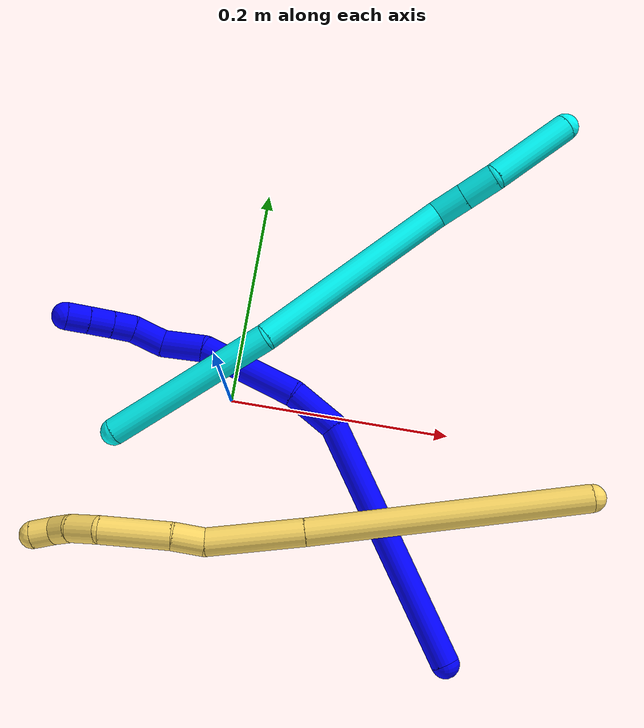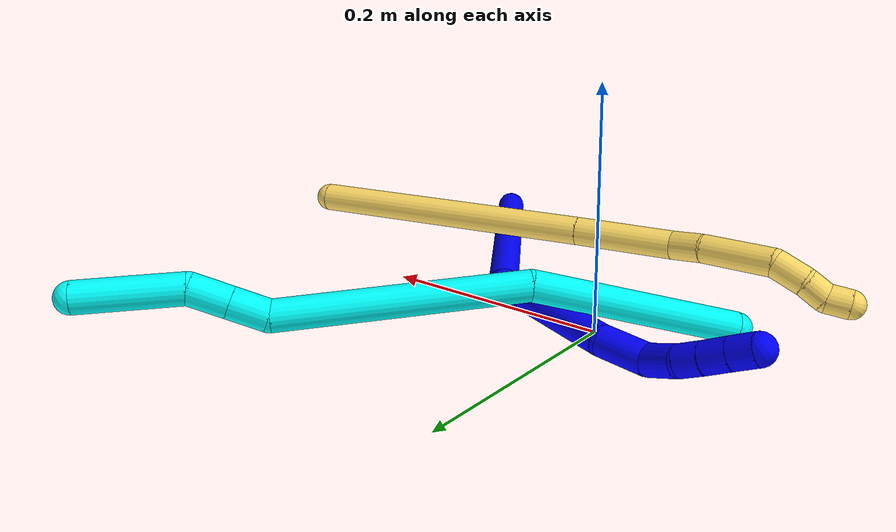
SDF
<sdf version="1.7">
 <world name="default">
  <model name="photoneo_s_sensor">
   <static>1</static>
   <pose>0 0 2 1.57079 1.57079 3.14159</pose>
   <link name="link">
    <inertial><mass>0.1</mass></inertial>
    <sensor name="sensor" type="depth">
     <update_rate>30</update_rate>
     <camera>
      <horizontal_fov>1.22</horizontal_fov>
      <image><width>1920</width><height>1200</height><format>B8G8R8</format></image>
      <clip><near>0.1</near><far>4</far></clip>
      <depth_camera><output>points</output></depth_camera>
     </camera>
     <plugin name="camera_plugin" filename="libgazebo_ros_depth_camera.so">
      <baseline>0.2</baseline>
      <alwaysOn>1</alwaysOn>
      <updateRate>0.0</updateRate>
      <cameraName>camera_ir</cameraName>
      <imageTopicName>/camera/color/image_raw</imageTopicName>
      <cameraInfoTopicName>/camera/color/camera_info</cameraInfoTopicName>
      <depthImageTopicName>/camera/depth/image_raw</depthImageTopicName>
      <depthImageCameraInfoTopicName>/camera/depth/camera_info</depthImageCameraInfoTopicName>
      <pointCloudTopicName>/camera/depth/points</pointCloudTopicName>
      <frameName>fr_optical</frameName>
      <pointCloudCutoff>0.1</pointCloudCutoff>
      <pointCloudCutoffMax>2.0</pointCloudCutoffMax>
      <distortionK1>0</distortionK1>
      <distortionK2>0</distortionK2>
      <distortionK3>0</distortionK3>
      <distortionT1>0</distortionT1>
      <distortionT2>0</distortionT2>
      <CxPrime>0</CxPrime>
      <Cx>0</Cx>
      <Cy>0</Cy>
      <focalLength>0</focalLength>
      <hackBaseline>0</hackBaseline>
     </plugin>
    </sensor>
   </link>
  </model>
  <model name="bin">
   <static>1</static>
   <link name="bottom">
    <collision name="collision-bottom">
     <pose>0 0 -0.01 0 -0 0</pose>
     <geometry><box><size>0.8 0.6 0.02</size></box></geometry>
     <surface>
      <friction><ode><mu>100</mu><mu2>100</mu2></ode></friction>
      <contact><collide_bitmask>65535</collide_bitmask></contact>
     </surface>
    </collision>
   </link>
   <link name="west_wall">
    <collision name="collision-west_wall">
     <pose>-0.41 0 0.1 0 -0 0</pose>
     <geometry><box><size>0.02 0.6 0.2</size></box></geometry>
     <surface>
      <friction><ode><mu>100</mu><mu2>100</mu2></ode></friction>
      <contact><collide_bitmask>65535</collide_bitmask></contact>
     </surface>
    </collision>
   </link>
   <link name="east_wall">
    <collision name="collision-east_wall">
     <pose>0.41 0 0.1 0 -0 0</pose>
     <geometry><box><size>0.02 0.6 0.2</size></box></geometry>
     <surface>
      <friction><ode><mu>100</mu><mu2>100</mu2></ode></friction>
      <contact><collide_bitmask>65535</collide_bitmask></contact>
     </surface>
    </collision>
   </link>
   <link name="south_wall">
    <collision name="collision-south_wall">
     <pose>0 -0.31 0.1 0 -0 0</pose>
     <geometry><box><size>0.8 0.02 0.2</size></box></geometry>
     <surface>
      <friction><ode><mu>100</mu><mu2>100</mu2></ode></friction>
      <contact><collide_bitmask>65535</collide_bitmask></contact>
     </surface>
    </collision>
   </link>
   <link name="north_wall">
    <collision name="collision-north_wall">
     <pose>0 0.31 0.1 0 -0 0</pose>
     <geometry><box><size>0.8 0.02 0.2</size></box></geometry>
     <surface>
      <friction><ode><mu>100</mu><mu2>100</mu2></ode></friction>
      <contact><collide_bitmask>65535</collide_bitmask></contact>
     </surface>
    </collision>
   </link>
  </model>
  <model name="1">
   <static>0</static>
   <link name="1">
    <collision name="collision-cylinder-e_1_1_4">
     <pose>-0.073846 0.087423 -0.008017 -1.66225 -0.699344 0.760372</pose>
     <geometry><cylinder><radius>0.0125</radius><length>0.229437</length></cylinder></geometry>
     <surface>
      <friction><ode><mu>1.16</mu><mu2>1.16</mu2><slip1>0</slip1><slip2>0</slip2></ode></friction>
      <contact><ode><kp>1e+06</kp><kd>1</kd><max_vel>0</max_vel><min_depth>0.001</min_depth></ode></contact>
     </surface>
    </collision>
    <visual name="visual-cylinder-e_1_1_4">
     <pose>-0.073846 0.087423 -0.008017 -1.66225 -0.699344 0.760372</pose>
     <geometry><cylinder><radius>0.0125</radius><length>0.229437</length></cylinder></geometry>
     <material><ambient>0 0 1 1</ambient></material>
    </visual>
    <collision name="collision-cylinder-e_2_4_5">
     <pose>-0.165057 0.188355 -0.008152 -1.04257 -0.837615 0.500545</pose>
     <geometry><cylinder><radius>0.0125</radius><length>0.04674</length></cylinder></geometry>
     <surface>
      <friction><ode><mu>1.16</mu><mu2>1.16</mu2><slip1>0</slip1><slip2>0</slip2></ode></friction>
      <contact><ode><kp>1e+06</kp><kd>1</kd><max_vel>0</max_vel><min_depth>0.001</min_depth></ode></contact>
     </surface>
    </collision>
    <visual name="visual-cylinder-e_2_4_5">
     <pose>-0.165057 0.188355 -0.008152 -1.04257 -0.837615 0.500545</pose>
     <geometry><cylinder><radius>0.0125</radius><length>0.04674</length></cylinder></geometry>
     <material><ambient>0 0 1 1</ambient></material>
    </visual>
    <collision name="collision-cylinder-e_3_5_6">
     <pose>-0.221319 0.218179 0.017955 -0.730198 -1.00941 0.416203</pose>
     <geometry><cylinder><radius>0.0125</radius><length>0.091897</length></cylinder></geometry>
     <surface>
      <friction><ode><mu>1.16</mu><mu2>1.16</mu2><slip1>0</slip1><slip2>0</slip2></ode></friction>
      <contact><ode><kp>1e+06</kp><kd>1</kd><max_vel>0</max_vel><min_depth>0.001</min_depth></ode></contact>
     </surface>
    </collision>
    <visual name="visual-cylinder-e_3_5_6">
     <pose>-0.221319 0.218179 0.017955 -0.730198 -1.00941 0.416203</pose>
     <geometry><cylinder><radius>0.0125</radius><length>0.091897</length></cylinder></geometry>
     <material><ambient>0 0 1 1</ambient></material>
    </visual>
    <collision name="collision-cylinder-e_4_6_7">
     <pose>-0.276978 0.235635 0.046777 -0.107215 -1.00443 0.05892</pose>
     <geometry><cylinder><radius>0.0125</radius><length>0.039729</length></cylinder></geometry>
     <surface>
      <friction><ode><mu>1.16</mu><mu2>1.16</mu2><slip1>0</slip1><slip2>0</slip2></ode></friction>
      <contact><ode><kp>1e+06</kp><kd>1</kd><max_vel>0</max_vel><min_depth>0.001</min_depth></ode></contact>
     </surface>
    </collision>
    <visual name="visual-cylinder-e_4_6_7">
     <pose>-0.276978 0.235635 0.046777 -0.107215 -1.00443 0.05892</pose>
     <geometry><cylinder><radius>0.0125</radius><length>0.039729</length></cylinder></geometry>
     <material><ambient>0 0 1 1</ambient></material>
    </visual>
    <collision name="collision-cylinder-e_5_7_8">
     <pose>-0.302628 0.244153 0.067044 -0.651737 -0.631072 0.219731</pose>
     <geometry><cylinder><radius>0.0125</radius><length>0.030127</length></cylinder></geometry>
     <surface>
      <friction><ode><mu>1.16</mu><mu2>1.16</mu2><slip1>0</slip1><slip2>0</slip2></ode></friction>
      <contact><ode><kp>1e+06</kp><kd>1</kd><max_vel>0</max_vel><min_depth>0.001</min_depth></ode></contact>
     </surface>
    </collision>
    <visual name="visual-cylinder-e_5_7_8">
     <pose>-0.302628 0.244153 0.067044 -0.651737 -0.631072 0.219731</pose>
     <geometry><cylinder><radius>0.0125</radius><length>0.030127</length></cylinder></geometry>
     <material><ambient>0 0 1 1</ambient></material>
    </visual>
    <collision name="collision-cylinder-e_6_8_9">
     <pose>-0.316556 0.254578 0.084862 -0.357841 -0.525093 0.097133</pose>
     <geometry><cylinder><radius>0.0125</radius><length>0.020109</length></cylinder></geometry>
     <surface>
      <friction><ode><mu>1.16</mu><mu2>1.16</mu2><slip1>0</slip1><slip2>0</slip2></ode></friction>
      <contact><ode><kp>1e+06</kp><kd>1</kd><max_vel>0</max_vel><min_depth>0.001</min_depth></ode></contact>
     </surface>
    </collision>
    <visual name="visual-cylinder-e_6_8_9">
     <pose>-0.316556 0.254578 0.084862 -0.357841 -0.525093 0.097133</pose>
     <geometry><cylinder><radius>0.0125</radius><length>0.020109</length></cylinder></geometry>
     <material><ambient>0 0 1 1</ambient></material>
    </visual>
    <collision name="collision-cylinder-e_7_9_10">
     <pose>-0.326709 0.260801 0.10197 -0.340743 -0.493489 0.086611</pose>
     <geometry><cylinder><radius>0.0125</radius><length>0.021585</length></cylinder></geometry>
     <surface>
      <friction><ode><mu>1.16</mu><mu2>1.16</mu2><slip1>0</slip1><slip2>0</slip2></ode></friction>
      <contact><ode><kp>1e+06</kp><kd>1</kd><max_vel>0</max_vel><min_depth>0.001</min_depth></ode></contact>
     </surface>
    </collision>
    <visual name="visual-cylinder-e_7_9_10">
     <pose>-0.326709 0.260801 0.10197 -0.340743 -0.493489 0.086611</pose>
     <geometry><cylinder><radius>0.0125</radius><length>0.021585</length></cylinder></geometry>
     <material><ambient>0 0 1 1</ambient></material>
    </visual>
    <collision name="collision-cylinder-e_8_10_2">
     <pose>-0.336734 0.266894 0.119364 -0.33282 -0.503158 0.086288</pose>
     <geometry><cylinder><radius>0.0125</radius><length>0.020375</length></cylinder></geometry>
     <surface>
      <friction><ode><mu>1.16</mu><mu2>1.16</mu2><slip1>0</slip1><slip2>0</slip2></ode></friction>
      <contact><ode><kp>1e+06</kp><kd>1</kd><max_vel>0</max_vel><min_depth>0.001</min_depth></ode></contact>
     </surface>
    </collision>
    <visual name="visual-cylinder-e_8_10_2">
     <pose>-0.336734 0.266894 0.119364 -0.33282 -0.503158 0.086288</pose>
     <geometry><cylinder><radius>0.0125</radius><length>0.020375</length></cylinder></geometry>
     <material><ambient>0 0 1 1</ambient></material>
    </visual>
    <collision name="collision-sphere-2">
     <pose>-0.341646 0.26981 0.127799 0 -0 0</pose>
     <geometry><sphere><radius>0.0125</radius></sphere></geometry>
     <surface>
      <friction><ode><mu>1.16</mu><mu2>1.16</mu2><slip1>0</slip1><slip2>0</slip2></ode></friction>
      <contact><ode><kp>1e+06</kp><kd>1</kd><max_vel>0</max_vel><min_depth>0.001</min_depth></ode></contact>
     </surface>
    </collision>
    <visual name="visual-sphere-2">
     <pose>-0.341646 0.26981 0.127799 0 -0 0</pose>
     <geometry><sphere><radius>0.0125</radius></sphere></geometry>
     <material><ambient>0 0 1 1</ambient></material>
    </visual>
    <collision name="collision-sphere-10">
     <pose>-0.331821 0.263978 0.110928 0 -0 0</pose>
     <geometry><sphere><radius>0.0125</radius></sphere></geometry>
     <surface>
      <friction><ode><mu>1.16</mu><mu2>1.16</mu2><slip1>0</slip1><slip2>0</slip2></ode></friction>
      <contact><ode><kp>1e+06</kp><kd>1</kd><max_vel>0</max_vel><min_depth>0.001</min_depth></ode></contact>
     </surface>
    </collision>
    <visual name="visual-sphere-10">
     <pose>-0.331821 0.263978 0.110928 0 -0 0</pose>
     <geometry><sphere><radius>0.0125</radius></sphere></geometry>
     <material><ambient>0 0 1 1</ambient></material>
    </visual>
    <collision name="collision-sphere-9">
     <pose>-0.321596 0.257625 0.093011 0 -0 0</pose>
     <geometry><sphere><radius>0.0125</radius></sphere></geometry>
     <surface>
      <friction><ode><mu>1.16</mu><mu2>1.16</mu2><slip1>0</slip1><slip2>0</slip2></ode></friction>
      <contact><ode><kp>1e+06</kp><kd>1</kd><max_vel>0</max_vel><min_depth>0.001</min_depth></ode></contact>
     </surface>
    </collision>
    <visual name="visual-sphere-9">
     <pose>-0.321596 0.257625 0.093011 0 -0 0</pose>
     <geometry><sphere><radius>0.0125</radius></sphere></geometry>
     <material><ambient>0 0 1 1</ambient></material>
    </visual>
    <collision name="collision-sphere-4">
     <pose>-0.147692 0.174846 -0.016035 0 -0 0</pose>
     <geometry><sphere><radius>0.0125</radius></sphere></geometry>
     <surface>
      <friction><ode><mu>1.16</mu><mu2>1.16</mu2><slip1>0</slip1><slip2>0</slip2></ode></friction>
      <contact><ode><kp>1e+06</kp><kd>1</kd><max_vel>0</max_vel><min_depth>0.001</min_depth></ode></contact>
     </surface>
    </collision>
    <visual name="visual-sphere-4">
     <pose>-0.147692 0.174846 -0.016035 0 -0 0</pose>
     <geometry><sphere><radius>0.0125</radius></sphere></geometry>
     <material><ambient>0 0 1 1</ambient></material>
    </visual>
    <collision name="collision-sphere-1">
     <geometry><sphere><radius>0.0125</radius></sphere></geometry>
     <surface>
      <friction><ode><mu>1.16</mu><mu2>1.16</mu2><slip1>0</slip1><slip2>0</slip2></ode></friction>
      <contact><ode><kp>1e+06</kp><kd>1</kd><max_vel>0</max_vel><min_depth>0.001</min_depth></ode></contact>
     </surface>
    </collision>
    <visual name="visual-sphere-1">
     <geometry><sphere><radius>0.0125</radius></sphere></geometry>
     <material><ambient>0 0 1 1</ambient></material>
    </visual>
    <collision name="collision-sphere-8">
     <pose>-0.311516 0.25153 0.076713 0 -0 0</pose>
     <geometry><sphere><radius>0.0125</radius></sphere></geometry>
     <surface>
      <friction><ode><mu>1.16</mu><mu2>1.16</mu2><slip1>0</slip1><slip2>0</slip2></ode></friction>
      <contact><ode><kp>1e+06</kp><kd>1</kd><max_vel>0</max_vel><min_depth>0.001</min_depth></ode></contact>
     </surface>
    </collision>
    <visual name="visual-sphere-8">
     <pose>-0.311516 0.25153 0.076713 0 -0 0</pose>
     <geometry><sphere><radius>0.0125</radius></sphere></geometry>
     <material><ambient>0 0 1 1</ambient></material>
    </visual>
    <collision name="collision-sphere-5">
     <pose>-0.182422 0.201863 -0.000269 0 -0 0</pose>
     <geometry><sphere><radius>0.0125</radius></sphere></geometry>
     <surface>
      <friction><ode><mu>1.16</mu><mu2>1.16</mu2><slip1>0</slip1><slip2>0</slip2></ode></friction>
      <contact><ode><kp>1e+06</kp><kd>1</kd><max_vel>0</max_vel><min_depth>0.001</min_depth></ode></contact>
     </surface>
    </collision>
    <visual name="visual-sphere-5">
     <pose>-0.182422 0.201863 -0.000269 0 -0 0</pose>
     <geometry><sphere><radius>0.0125</radius></sphere></geometry>
     <material><ambient>0 0 1 1</ambient></material>
    </visual>
    <collision name="collision-sphere-6">
     <pose>-0.260215 0.234495 0.03618 0 -0 0</pose>
     <geometry><sphere><radius>0.0125</radius></sphere></geometry>
     <surface>
      <friction><ode><mu>1.16</mu><mu2>1.16</mu2><slip1>0</slip1><slip2>0</slip2></ode></friction>
      <contact><ode><kp>1e+06</kp><kd>1</kd><max_vel>0</max_vel><min_depth>0.001</min_depth></ode></contact>
     </surface>
    </collision>
    <visual name="visual-sphere-6">
     <pose>-0.260215 0.234495 0.03618 0 -0 0</pose>
     <geometry><sphere><radius>0.0125</radius></sphere></geometry>
     <material><ambient>0 0 1 1</ambient></material>
    </visual>
    <collision name="collision-sphere-7">
     <pose>-0.29374 0.236776 0.057375 0 -0 0</pose>
     <geometry><sphere><radius>0.0125</radius></sphere></geometry>
     <surface>
      <friction><ode><mu>1.16</mu><mu2>1.16</mu2><slip1>0</slip1><slip2>0</slip2></ode></friction>
      <contact><ode><kp>1e+06</kp><kd>1</kd><max_vel>0</max_vel><min_depth>0.001</min_depth></ode></contact>
     </surface>
    </collision>
    <visual name="visual-sphere-7">
     <pose>-0.29374 0.236776 0.057375 0 -0 0</pose>
     <geometry><sphere><radius>0.0125</radius></sphere></geometry>
     <material><ambient>0 0 1 1</ambient></material>
    </visual>
    <inertial>
     <pose>-0.170793 0.163632 0.019295 0 -0 0</pose>
     <mass>0.5</mass>
     <inertia>
      <ixx>0.001141</ixx>
      <ixy>0</ixy>
      <ixz>0</ixz>
      <iyy>0.001041</iyy>
      <iyz>0</iyz>
      <izz>-6.8e-05</izz>
     </inertia>
    </inertial>
   </link>
   <pose>0.225927 -0.199859 0.011495 0.747703 -0.604911 -0.320712</pose>
  </model>
  <model name="3">
   <static>0</static>
   <link name="3">
    <collision name="collision-cylinder-e_1_1_4">
     <pose>0.03558 0.028752 0.06717 -0.404447 0.45316 -0.094463</pose>
     <geometry><cylinder><radius>0.0125</radius><length>0.162534</length></cylinder></geometry>
     <surface>
      <friction><ode><mu>1.16</mu><mu2>1.16</mu2><slip1>0</slip1><slip2>0</slip2></ode></friction>
      <contact><ode><kp>1e+06</kp><kd>1</kd><max_vel>0</max_vel><min_depth>0.001</min_depth></ode></contact>
     </surface>
    </collision>
    <visual name="visual-cylinder-e_1_1_4">
     <pose>0.03558 0.028752 0.06717 -0.404447 0.45316 -0.094463</pose>
     <geometry><cylinder><radius>0.0125</radius><length>0.162534</length></cylinder></geometry>
     <material><ambient>0.003922 1 0.996078 1</ambient></material>
    </visual>
    <collision name="collision-cylinder-e_2_4_5">
     <pose>0.126665 0.110489 0.194239 -0.724229 0.606736 -0.236061</pose>
     <geometry><cylinder><radius>0.0125</radius><length>0.194692</length></cylinder></geometry>
     <surface>
      <friction><ode><mu>1.16</mu><mu2>1.16</mu2><slip1>0</slip1><slip2>0</slip2></ode></friction>
      <contact><ode><kp>1e+06</kp><kd>1</kd><max_vel>0</max_vel><min_depth>0.001</min_depth></ode></contact>
     </surface>
    </collision>
    <visual name="visual-cylinder-e_2_4_5">
     <pose>0.126665 0.110489 0.194239 -0.724229 0.606736 -0.236061</pose>
     <geometry><cylinder><radius>0.0125</radius><length>0.194692</length></cylinder></geometry>
     <material><ambient>0.003922 1 0.996078 1</ambient></material>
    </visual>
    <collision name="collision-cylinder-e_3_5_6">
     <pose>0.187239 0.167802 0.267531 -0.312522 0.345665 -0.054993</pose>
     <geometry><cylinder><radius>0.0125</radius><length>0.029918</length></cylinder></geometry>
     <surface>
      <friction><ode><mu>1.16</mu><mu2>1.16</mu2><slip1>0</slip1><slip2>0</slip2></ode></friction>
      <contact><ode><kp>1e+06</kp><kd>1</kd><max_vel>0</max_vel><min_depth>0.001</min_depth></ode></contact>
     </surface>
    </collision>
    <visual name="visual-cylinder-e_3_5_6">
     <pose>0.187239 0.167802 0.267531 -0.312522 0.345665 -0.054993</pose>
     <geometry><cylinder><radius>0.0125</radius><length>0.029918</length></cylinder></geometry>
     <material><ambient>0.003922 1 0.996078 1</ambient></material>
    </visual>
    <collision name="collision-cylinder-e_4_6_7">
     <pose>0.19769 0.176781 0.295085 -0.317381 0.346513 -0.056002</pose>
     <geometry><cylinder><radius>0.0125</radius><length>0.031697</length></cylinder></geometry>
     <surface>
      <friction><ode><mu>1.16</mu><mu2>1.16</mu2><slip1>0</slip1><slip2>0</slip2></ode></friction>
      <contact><ode><kp>1e+06</kp><kd>1</kd><max_vel>0</max_vel><min_depth>0.001</min_depth></ode></contact>
     </surface>
    </collision>
    <visual name="visual-cylinder-e_4_6_7">
     <pose>0.19769 0.176781 0.295085 -0.317381 0.346513 -0.056002</pose>
     <geometry><cylinder><radius>0.0125</radius><length>0.031697</length></cylinder></geometry>
     <material><ambient>0.003922 1 0.996078 1</ambient></material>
    </visual>
    <collision name="collision-cylinder-e_5_7_2">
     <pose>0.225721 0.202804 0.335266 -0.687626 0.59214 -0.217563</pose>
     <geometry><cylinder><radius>0.0125</radius><length>0.081158</length></cylinder></geometry>
     <surface>
      <friction><ode><mu>1.16</mu><mu2>1.16</mu2><slip1>0</slip1><slip2>0</slip2></ode></friction>
      <contact><ode><kp>1e+06</kp><kd>1</kd><max_vel>0</max_vel><min_depth>0.001</min_depth></ode></contact>
     </surface>
    </collision>
    <visual name="visual-cylinder-e_5_7_2">
     <pose>0.225721 0.202804 0.335266 -0.687626 0.59214 -0.217563</pose>
     <geometry><cylinder><radius>0.0125</radius><length>0.081158</length></cylinder></geometry>
     <material><ambient>0.003922 1 0.996078 1</ambient></material>
    </visual>
    <collision name="collision-sphere-2">
     <pose>0.24837 0.224175 0.361285 0 -0 0</pose>
     <geometry><sphere><radius>0.0125</radius></sphere></geometry>
     <surface>
      <friction><ode><mu>1.16</mu><mu2>1.16</mu2><slip1>0</slip1><slip2>0</slip2></ode></friction>
      <contact><ode><kp>1e+06</kp><kd>1</kd><max_vel>0</max_vel><min_depth>0.001</min_depth></ode></contact>
     </surface>
    </collision>
    <visual name="visual-sphere-2">
     <pose>0.24837 0.224175 0.361285 0 -0 0</pose>
     <geometry><sphere><radius>0.0125</radius></sphere></geometry>
     <material><ambient>0.003922 1 0.996078 1</ambient></material>
    </visual>
    <collision name="collision-sphere-7">
     <pose>0.203072 0.181433 0.309247 0 -0 0</pose>
     <geometry><sphere><radius>0.0125</radius></sphere></geometry>
     <surface>
      <friction><ode><mu>1.16</mu><mu2>1.16</mu2><slip1>0</slip1><slip2>0</slip2></ode></friction>
      <contact><ode><kp>1e+06</kp><kd>1</kd><max_vel>0</max_vel><min_depth>0.001</min_depth></ode></contact>
     </surface>
    </collision>
    <visual name="visual-sphere-7">
     <pose>0.203072 0.181433 0.309247 0 -0 0</pose>
     <geometry><sphere><radius>0.0125</radius></sphere></geometry>
     <material><ambient>0.003922 1 0.996078 1</ambient></material>
    </visual>
    <collision name="collision-sphere-6">
     <pose>0.192307 0.172129 0.280923 0 -0 0</pose>
     <geometry><sphere><radius>0.0125</radius></sphere></geometry>
     <surface>
      <friction><ode><mu>1.16</mu><mu2>1.16</mu2><slip1>0</slip1><slip2>0</slip2></ode></friction>
      <contact><ode><kp>1e+06</kp><kd>1</kd><max_vel>0</max_vel><min_depth>0.001</min_depth></ode></contact>
     </surface>
    </collision>
    <visual name="visual-sphere-6">
     <pose>0.192307 0.172129 0.280923 0 -0 0</pose>
     <geometry><sphere><radius>0.0125</radius></sphere></geometry>
     <material><ambient>0.003922 1 0.996078 1</ambient></material>
    </visual>
    <collision name="collision-sphere-5">
     <pose>0.18217 0.163475 0.254138 0 -0 0</pose>
     <geometry><sphere><radius>0.0125</radius></sphere></geometry>
     <surface>
      <friction><ode><mu>1.16</mu><mu2>1.16</mu2><slip1>0</slip1><slip2>0</slip2></ode></friction>
      <contact><ode><kp>1e+06</kp><kd>1</kd><max_vel>0</max_vel><min_depth>0.001</min_depth></ode></contact>
     </surface>
    </collision>
    <visual name="visual-sphere-5">
     <pose>0.18217 0.163475 0.254138 0 -0 0</pose>
     <geometry><sphere><radius>0.0125</radius></sphere></geometry>
     <material><ambient>0.003922 1 0.996078 1</ambient></material>
    </visual>
    <collision name="collision-sphere-1">
     <geometry><sphere><radius>0.0125</radius></sphere></geometry>
     <surface>
      <friction><ode><mu>1.16</mu><mu2>1.16</mu2><slip1>0</slip1><slip2>0</slip2></ode></friction>
      <contact><ode><kp>1e+06</kp><kd>1</kd><max_vel>0</max_vel><min_depth>0.001</min_depth></ode></contact>
     </surface>
    </collision>
    <visual name="visual-sphere-1">
     <geometry><sphere><radius>0.0125</radius></sphere></geometry>
     <material><ambient>0.003922 1 0.996078 1</ambient></material>
    </visual>
    <collision name="collision-sphere-4">
     <pose>0.071159 0.057503 0.13434 0 -0 0</pose>
     <geometry><sphere><radius>0.0125</radius></sphere></geometry>
     <surface>
      <friction><ode><mu>1.16</mu><mu2>1.16</mu2><slip1>0</slip1><slip2>0</slip2></ode></friction>
      <contact><ode><kp>1e+06</kp><kd>1</kd><max_vel>0</max_vel><min_depth>0.001</min_depth></ode></contact>
     </surface>
    </collision>
    <visual name="visual-sphere-4">
     <pose>0.071159 0.057503 0.13434 0 -0 0</pose>
     <geometry><sphere><radius>0.0125</radius></sphere></geometry>
     <material><ambient>0.003922 1 0.996078 1</ambient></material>
    </visual>
    <inertial>
     <pose>0.121261 0.106535 0.186602 0 -0 0</pose>
     <mass>0.5</mass>
     <inertia>
      <ixx>0.000729</ixx>
      <ixy>0</ixy>
      <ixz>0</ixz>
      <iyy>0.000752</iyy>
      <iyz>0</iyz>
      <izz>-0.00101</izz>
     </inertia>
    </inertial>
   </link>
   <pose>-0.098213 -0.047335 0.013242 -0.322473 0.702963 0.024151</pose>
  </model>
  <model name="5">
   <static>0</static>
   <link name="5">
    <collision name="collision-cylinder-e_1_1_4">
     <pose>-0.11909 -0.007975 0.038401 0.204764 -1.25265 -0.148394</pose>
     <geometry><cylinder><radius>0.0125</radius><length>0.250765</length></cylinder></geometry>
     <surface>
      <friction><ode><mu>1.16</mu><mu2>1.16</mu2><slip1>0</slip1><slip2>0</slip2></ode></friction>
      <contact><ode><kp>1e+06</kp><kd>1</kd><max_vel>0</max_vel><min_depth>0.001</min_depth></ode></contact>
     </surface>
    </collision>
    <visual name="visual-cylinder-e_1_1_4">
     <pose>-0.11909 -0.007975 0.038401 0.204764 -1.25265 -0.148394</pose>
     <geometry><cylinder><radius>0.0125</radius><length>0.250765</length></cylinder></geometry>
     <material><ambient>1 0.858824 0.4 1</ambient></material>
    </visual>
    <collision name="collision-cylinder-e_2_4_5">
     <pose>-0.279767 -0.019266 0.089554 0.254388 -1.26398 -0.186722</pose>
     <geometry><cylinder><radius>0.0125</radius><length>0.087249</length></cylinder></geometry>
     <surface>
      <friction><ode><mu>1.16</mu><mu2>1.16</mu2><slip1>0</slip1><slip2>0</slip2></ode></friction>
      <contact><ode><kp>1e+06</kp><kd>1</kd><max_vel>0</max_vel><min_depth>0.001</min_depth></ode></contact>
     </surface>
    </collision>
    <visual name="visual-cylinder-e_2_4_5">
     <pose>-0.279767 -0.019266 0.089554 0.254388 -1.26398 -0.186722</pose>
     <geometry><cylinder><radius>0.0125</radius><length>0.087249</length></cylinder></geometry>
     <material><ambient>1 0.858824 0.4 1</ambient></material>
    </visual>
    <collision name="collision-cylinder-e_3_5_6">
     <pose>-0.335695 -0.023936 0.102255 1.60792 -1.47653 -1.51356</pose>
     <geometry><cylinder><radius>0.0125</radius><length>0.028809</length></cylinder></geometry>
     <surface>
      <friction><ode><mu>1.16</mu><mu2>1.16</mu2><slip1>0</slip1><slip2>0</slip2></ode></friction>
      <contact><ode><kp>1e+06</kp><kd>1</kd><max_vel>0</max_vel><min_depth>0.001</min_depth></ode></contact>
     </surface>
    </collision>
    <visual name="visual-cylinder-e_3_5_6">
     <pose>-0.335695 -0.023936 0.102255 1.60792 -1.47653 -1.51356</pose>
     <geometry><cylinder><radius>0.0125</radius><length>0.028809</length></cylinder></geometry>
     <material><ambient>1 0.858824 0.4 1</ambient></material>
    </visual>
    <collision name="collision-cylinder-e_4_6_7">
     <pose>-0.381057 -0.03018 0.106233 0.881587 -1.36934 -0.735268</pose>
     <geometry><cylinder><radius>0.0125</radius><length>0.063322</length></cylinder></geometry>
     <surface>
      <friction><ode><mu>1.16</mu><mu2>1.16</mu2><slip1>0</slip1><slip2>0</slip2></ode></friction>
      <contact><ode><kp>1e+06</kp><kd>1</kd><max_vel>0</max_vel><min_depth>0.001</min_depth></ode></contact>
     </surface>
    </collision>
    <visual name="visual-cylinder-e_4_6_7">
     <pose>-0.381057 -0.03018 0.106233 0.881587 -1.36934 -0.735268</pose>
     <geometry><cylinder><radius>0.0125</radius><length>0.063322</length></cylinder></geometry>
     <material><ambient>1 0.858824 0.4 1</ambient></material>
    </visual>
    <collision name="collision-cylinder-e_5_7_8">
     <pose>-0.424155 -0.041902 0.114666 0.998189 -0.978413 -0.564901</pose>
     <geometry><cylinder><radius>0.0125</radius><length>0.029118</length></cylinder></geometry>
     <surface>
      <friction><ode><mu>1.16</mu><mu2>1.16</mu2><slip1>0</slip1><slip2>0</slip2></ode></friction>
      <contact><ode><kp>1e+06</kp><kd>1</kd><max_vel>0</max_vel><min_depth>0.001</min_depth></ode></contact>
     </surface>
    </collision>
    <visual name="visual-cylinder-e_5_7_8">
     <pose>-0.424155 -0.041902 0.114666 0.998189 -0.978413 -0.564901</pose>
     <geometry><cylinder><radius>0.0125</radius><length>0.029118</length></cylinder></geometry>
     <material><ambient>1 0.858824 0.4 1</ambient></material>
    </visual>
    <collision name="collision-cylinder-e_6_8_9">
     <pose>-0.443247 -0.054249 0.123908 0.85082 -0.762944 -0.359553</pose>
     <geometry><cylinder><radius>0.0125</radius><length>0.020298</length></cylinder></geometry>
     <surface>
      <friction><ode><mu>1.16</mu><mu2>1.16</mu2><slip1>0</slip1><slip2>0</slip2></ode></friction>
      <contact><ode><kp>1e+06</kp><kd>1</kd><max_vel>0</max_vel><min_depth>0.001</min_depth></ode></contact>
     </surface>
    </collision>
    <visual name="visual-cylinder-e_6_8_9">
     <pose>-0.443247 -0.054249 0.123908 0.85082 -0.762944 -0.359553</pose>
     <geometry><cylinder><radius>0.0125</radius><length>0.020298</length></cylinder></geometry>
     <material><ambient>1 0.858824 0.4 1</ambient></material>
    </visual>
    <collision name="collision-cylinder-e_7_9_2">
     <pose>-0.459434 -0.061335 0.132967 0.35634 -1.11429 -0.223438</pose>
     <geometry><cylinder><radius>0.0125</radius><length>0.02044</length></cylinder></geometry>
     <surface>
      <friction><ode><mu>1.16</mu><mu2>1.16</mu2><slip1>0</slip1><slip2>0</slip2></ode></friction>
      <contact><ode><kp>1e+06</kp><kd>1</kd><max_vel>0</max_vel><min_depth>0.001</min_depth></ode></contact>
     </surface>
    </collision>
    <visual name="visual-cylinder-e_7_9_2">
     <pose>-0.459434 -0.061335 0.132967 0.35634 -1.11429 -0.223438</pose>
     <geometry><cylinder><radius>0.0125</radius><length>0.02044</length></cylinder></geometry>
     <material><ambient>1 0.858824 0.4 1</ambient></material>
    </visual>
    <collision name="collision-sphere-2">
     <pose>-0.468608 -0.062907 0.137189 0 -0 0</pose>
     <geometry><sphere><radius>0.0125</radius></sphere></geometry>
     <surface>
      <friction><ode><mu>1.16</mu><mu2>1.16</mu2><slip1>0</slip1><slip2>0</slip2></ode></friction>
      <contact><ode><kp>1e+06</kp><kd>1</kd><max_vel>0</max_vel><min_depth>0.001</min_depth></ode></contact>
     </surface>
    </collision>
    <visual name="visual-sphere-2">
     <pose>-0.468608 -0.062907 0.137189 0 -0 0</pose>
     <geometry><sphere><radius>0.0125</radius></sphere></geometry>
     <material><ambient>1 0.858824 0.4 1</ambient></material>
    </visual>
    <collision name="collision-sphere-9">
     <pose>-0.45026 -0.059764 0.128745 0 -0 0</pose>
     <geometry><sphere><radius>0.0125</radius></sphere></geometry>
     <surface>
      <friction><ode><mu>1.16</mu><mu2>1.16</mu2><slip1>0</slip1><slip2>0</slip2></ode></friction>
      <contact><ode><kp>1e+06</kp><kd>1</kd><max_vel>0</max_vel><min_depth>0.001</min_depth></ode></contact>
     </surface>
    </collision>
    <visual name="visual-sphere-9">
     <pose>-0.45026 -0.059764 0.128745 0 -0 0</pose>
     <geometry><sphere><radius>0.0125</radius></sphere></geometry>
     <material><ambient>1 0.858824 0.4 1</ambient></material>
    </visual>
    <collision name="collision-sphere-4">
     <pose>-0.23818 -0.01595 0.076802 0 -0 0</pose>
     <geometry><sphere><radius>0.0125</radius></sphere></geometry>
     <surface>
      <friction><ode><mu>1.16</mu><mu2>1.16</mu2><slip1>0</slip1><slip2>0</slip2></ode></friction>
      <contact><ode><kp>1e+06</kp><kd>1</kd><max_vel>0</max_vel><min_depth>0.001</min_depth></ode></contact>
     </surface>
    </collision>
    <visual name="visual-sphere-4">
     <pose>-0.23818 -0.01595 0.076802 0 -0 0</pose>
     <geometry><sphere><radius>0.0125</radius></sphere></geometry>
     <material><ambient>1 0.858824 0.4 1</ambient></material>
    </visual>
    <collision name="collision-sphere-1">
     <geometry><sphere><radius>0.0125</radius></sphere></geometry>
     <surface>
      <friction><ode><mu>1.16</mu><mu2>1.16</mu2><slip1>0</slip1><slip2>0</slip2></ode></friction>
      <contact><ode><kp>1e+06</kp><kd>1</kd><max_vel>0</max_vel><min_depth>0.001</min_depth></ode></contact>
     </surface>
    </collision>
    <visual name="visual-sphere-1">
     <geometry><sphere><radius>0.0125</radius></sphere></geometry>
     <material><ambient>1 0.858824 0.4 1</ambient></material>
    </visual>
    <collision name="collision-sphere-8">
     <pose>-0.436234 -0.048734 0.119071 0 -0 0</pose>
     <geometry><sphere><radius>0.0125</radius></sphere></geometry>
     <surface>
      <friction><ode><mu>1.16</mu><mu2>1.16</mu2><slip1>0</slip1><slip2>0</slip2></ode></friction>
      <contact><ode><kp>1e+06</kp><kd>1</kd><max_vel>0</max_vel><min_depth>0.001</min_depth></ode></contact>
     </surface>
    </collision>
    <visual name="visual-sphere-8">
     <pose>-0.436234 -0.048734 0.119071 0 -0 0</pose>
     <geometry><sphere><radius>0.0125</radius></sphere></geometry>
     <material><ambient>1 0.858824 0.4 1</ambient></material>
    </visual>
    <collision name="collision-sphere-5">
     <pose>-0.321355 -0.022581 0.102305 0 -0 0</pose>
     <geometry><sphere><radius>0.0125</radius></sphere></geometry>
     <surface>
      <friction><ode><mu>1.16</mu><mu2>1.16</mu2><slip1>0</slip1><slip2>0</slip2></ode></friction>
      <contact><ode><kp>1e+06</kp><kd>1</kd><max_vel>0</max_vel><min_depth>0.001</min_depth></ode></contact>
     </surface>
    </collision>
    <visual name="visual-sphere-5">
     <pose>-0.321355 -0.022581 0.102305 0 -0 0</pose>
     <geometry><sphere><radius>0.0125</radius></sphere></geometry>
     <material><ambient>1 0.858824 0.4 1</ambient></material>
    </visual>
    <collision name="collision-sphere-6">
     <pose>-0.350036 -0.025291 0.102204 0 -0 0</pose>
     <geometry><sphere><radius>0.0125</radius></sphere></geometry>
     <surface>
      <friction><ode><mu>1.16</mu><mu2>1.16</mu2><slip1>0</slip1><slip2>0</slip2></ode></friction>
      <contact><ode><kp>1e+06</kp><kd>1</kd><max_vel>0</max_vel><min_depth>0.001</min_depth></ode></contact>
     </surface>
    </collision>
    <visual name="visual-sphere-6">
     <pose>-0.350036 -0.025291 0.102204 0 -0 0</pose>
     <geometry><sphere><radius>0.0125</radius></sphere></geometry>
     <material><ambient>1 0.858824 0.4 1</ambient></material>
    </visual>
    <collision name="collision-sphere-7">
     <pose>-0.412077 -0.035069 0.110262 0 -0 0</pose>
     <geometry><sphere><radius>0.0125</radius></sphere></geometry>
     <surface>
      <friction><ode><mu>1.16</mu><mu2>1.16</mu2><slip1>0</slip1><slip2>0</slip2></ode></friction>
      <contact><ode><kp>1e+06</kp><kd>1</kd><max_vel>0</max_vel><min_depth>0.001</min_depth></ode></contact>
     </surface>
    </collision>
    <visual name="visual-sphere-7">
     <pose>-0.412077 -0.035069 0.110262 0 -0 0</pose>
     <geometry><sphere><radius>0.0125</radius></sphere></geometry>
     <material><ambient>1 0.858824 0.4 1</ambient></material>
    </visual>
    <inertial>
     <pose>-0.237623 -0.019713 0.071375 0 -0 0</pose>
     <mass>0.5</mass>
     <inertia>
      <ixx>0.000328</ixx>
      <ixy>0</ixy>
      <ixz>0</ixz>
      <iyy>0.001335</iyy>
      <iyz>0</iyz>
      <izz>0.001451</izz>
     </inertia>
    </inertial>
   </link>
   <pose>0.327678 -0.039297 0.041157 2.06777 0.191107 0.041572</pose>
  </model>
 </world>
</sdf>
